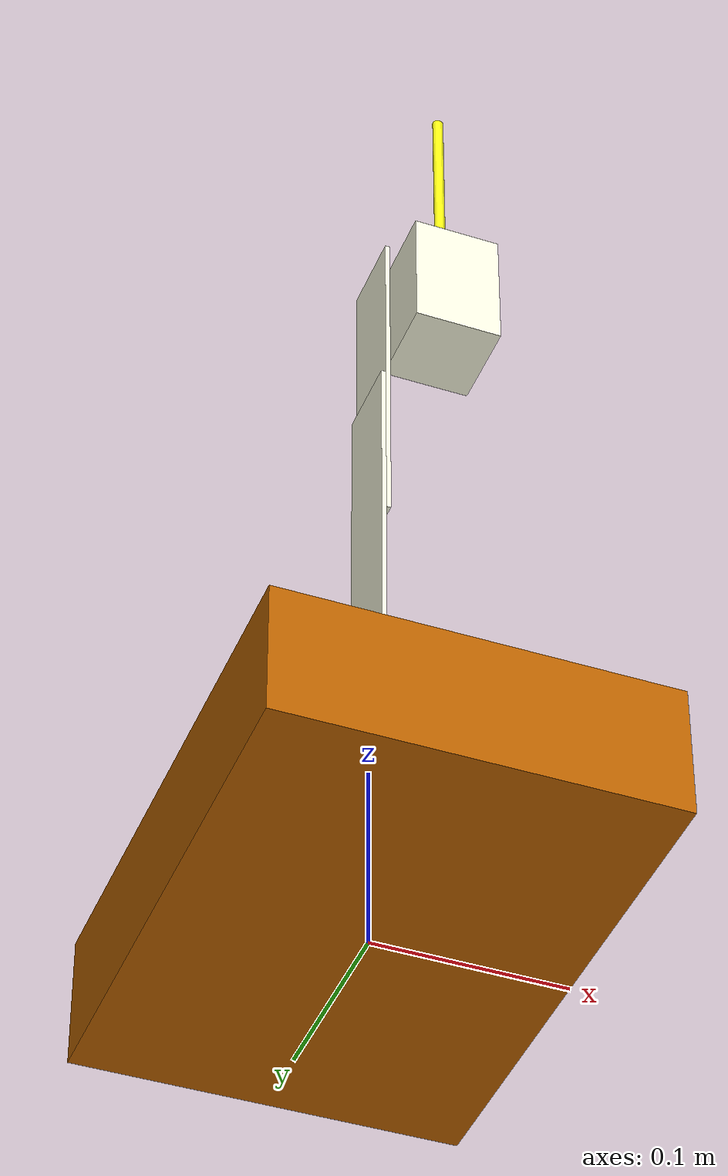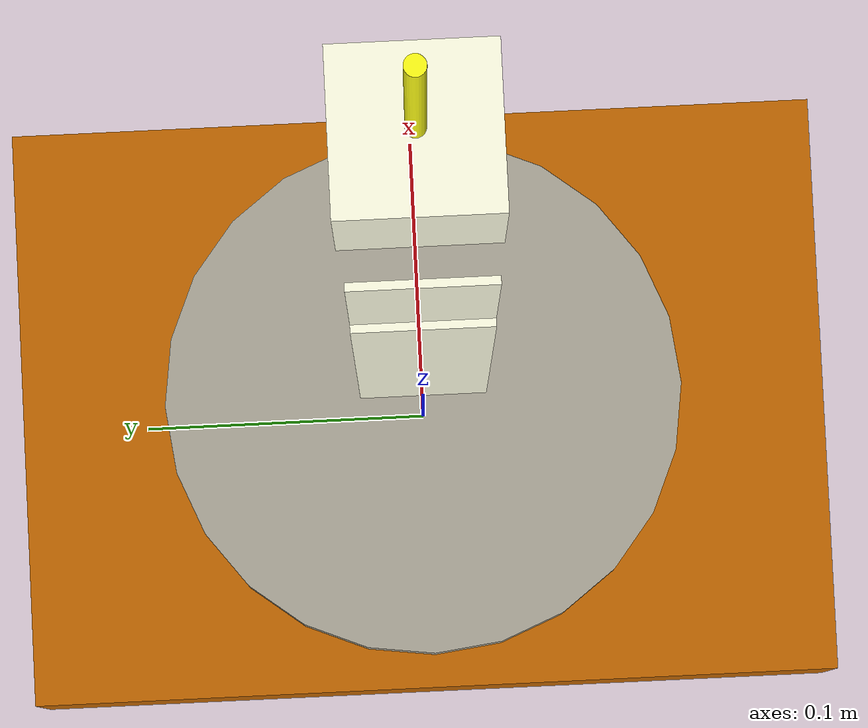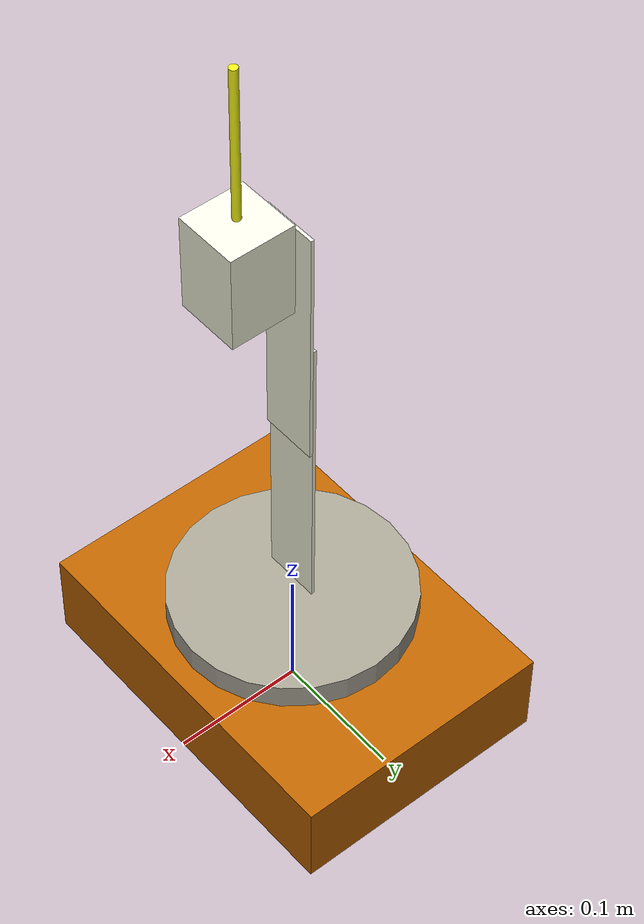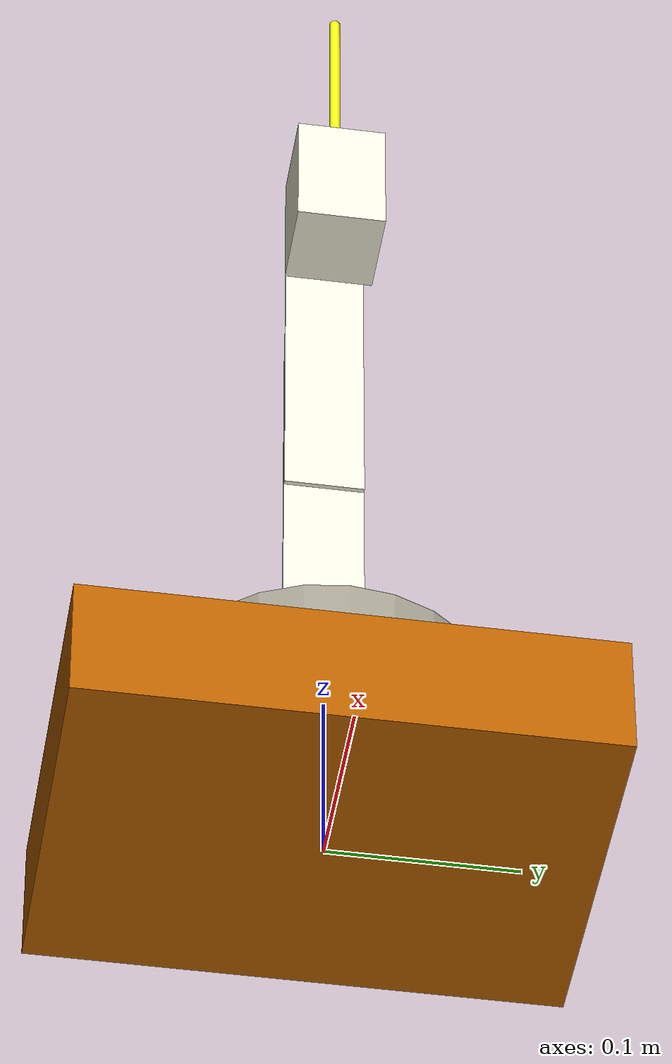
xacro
<?xml version="1.0"?>

<robot name="robot_arm" xmlns:xacro="http://ros.org/wiki/xacro">

   <material name="greyish" >
      <color rgba="0.6588235294117647 0.6431372549019608 0.5843137254901961 1.0" />
   </material>

  <material name="yellow" >
    <color rgba="1.0 1.0 0.0784313725490196 1.0" />
  </material>

  <material name="orangebrown" >
    <color rgba="0.7450980392156863 0.39215686274509803 0.0 1.0" />
  </material>

  <material name="offwhite" >
    <color rgba="1.0 1.0 0.8941176470588236 1.0" />
  </material>

  <link name="world"></link>

  <joint name="fixed_base" type="fixed">
  <parent link="world" />
  <child link="base_link" />
  <origin xyz="0.0 0.0 0.0" rpy="0.0 0.0 0.0" />
  </joint>

   <!-- Start of the arm -->
  <link name="base_link">
      <visual>
         <origin rpy="0 0 0" xyz="0 0 0.035"/>
            <geometry>
               <box size="0.200 0.280 0.070"/>
            </geometry>
         <material name="orangebrown"/>
      </visual>
   </link>

  <!-- Start of the joints-->
  <!-- base_Joint_1 -->
  <joint name="base_joint_1" type="revolute">
    <axis xyz="0 0 1"/>
    <limit effort="1000.0" lower="-1.57" upper="1.57" velocity="0.5"/> <!--  velocity: radius / sec or m/s ||  effort: Newton or N*m-->
    <origin rpy="0 0 0" xyz="0 0 0.09"/>
    <parent link="base_link"/>
    <child link="cylinder_link"/>
  </joint>

  <link name="cylinder_link">
    <visual>
        <origin rpy="0 0 0" xyz="0 0 0.0"/>
          <geometry>
              <cylinder length="0.02" radius="0.0889"/> <!-- radius and length -->
          </geometry>
        <material name="greyish"/>
    </visual>
  </link>

   <!-- shoulder_Joint_2 -->
   <joint name="shoulder_joint_2" type="revolute">
      <axis xyz="1 0 0"/>
      <limit effort="1000.0" lower="-1.57" upper="1.57" velocity="0.5"/> <!--  velocity: radius / sec or m/s ||  effort: Newton or N*m-->
      <origin rpy="0 0 0" xyz="0 0 0.046"/>
      <parent link="cylinder_link"/>
      <child link="bicep_link"/>
   </joint>

   <link name="bicep_link">
      <visual>
         <origin rpy="0 0 0" xyz="0 0 0.096"/>
            <geometry>
               <box size="0.0025 0.043 0.240"/>
            </geometry>
         <material name="offwhite"/>
      </visual>
   </link>

   <!-- elbow_Joint_3 -->
   <joint name="elbow_joint_3" type="revolute">
      <axis xyz="1 0 0"/>
      <limit effort="1000.0" lower="-1.57" upper="1.57" velocity="0.5"/> <!--  velocity: radius / sec or m/s ||  effort: Newton or N*m-->
      <origin rpy="0 0 0" xyz="0.0025 0 0.144"/>
      <parent link="bicep_link"/>
      <child link="elbow_link"/>
   </joint>

   <link name="elbow_link">
      <visual>
         <origin rpy="0 0 0" xyz="0 0 0.072"/>
            <geometry>
               <box size="0.0025 0.043 0.192"/>
            </geometry>
         <material name="offwhite"/>
      </visual>
   </link>

   <!-- wrist_Joint_4_And_Link -->
   <joint name="wrist_joint_4" type="revolute">
      <axis xyz="1 0 0"/>
      <limit effort="1000.0" lower="-1.57" upper="1.57" velocity="0.5"/> <!--  velocity: radius / sec or m/s ||  effort: Newton or N*m-->
      <origin rpy="0 0 0" xyz="0 0 0.144"/>
      <parent link="elbow_link"/>
      <child link="wrist_link"/>
   </joint>

   <link name="wrist_link">
      <visual>
         <origin rpy="0 0 0" xyz="0.03945 0 0.012"/>
            <geometry>
               <box size="0.048 0.048 0.072"/>/
            </geometry>
         <material name="offwhite"/>
      </visual>
   </link>

   <!-- Roll_Joint_5_And_Link -->
   <joint name="roll_wrist_joint_5" type="revolute">
      <axis xyz="0 0 1"/>
      <limit effort="1000.0" lower="-1.57" upper="1.57" velocity="0.5"/> <!--  velocity: radius / sec or m/s ||  effort: Newton or N*m-->
      <origin rpy="0 0 0" xyz="0.03945 0 0.05044"/>
      <parent link="wrist_link"/>
      <child link="end_effector_link"/>
   </joint>

   <link name="end_effector_link">
      <visual>
         <origin rpy="0 0 0" xyz="0 0 0.05644"/>
            <geometry>
               <cylinder length="0.11288" radius="0.003"/> <!-- radius and length -->
            </geometry>
         <material name="yellow"/>
      </visual>
   </link>

</robot>
